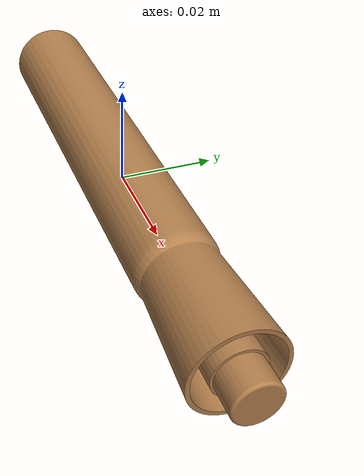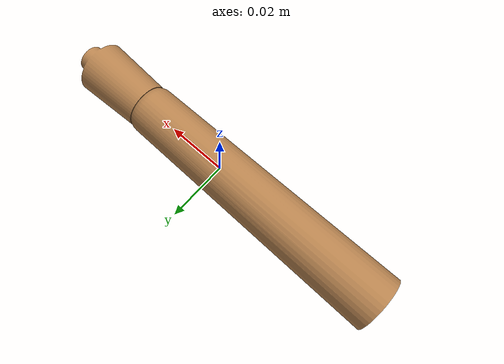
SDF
<?xml version="1.0" ?>
<sdf version="1.6">
  <model name="YCB_large_marker">
    <static>false</static>
    <link name="link">
      <inertial>
        <mass>0.5</mass>
        <inertia>
          <ixx>0.001</ixx>
          <iyy>0.001</iyy>
          <izz>0.001</izz>
          <ixy>0.0</ixy>
          <ixz>0.0</ixz>
          <iyz>0.0</iyz>
        </inertia>
      </inertial>
      <visual name="visual">
        <geometry>
          <mesh>
            <uri>model://YCB_large_marker/meshes/model.stl</uri>
          </mesh>
        </geometry>
        <material>
          <script>
            <uri>file://media/materials/scripts/gazebo.material</uri>
            <name>Gazebo/WoodPallet</name>
          </script>
        </material>
      </visual>
      <collision name="collision">
        <geometry>
          <mesh>
            <uri>model://YCB_large_marker/meshes/model.stl</uri>
          </mesh>
        </geometry>
      </collision>
    </link>
  </model>
</sdf>
